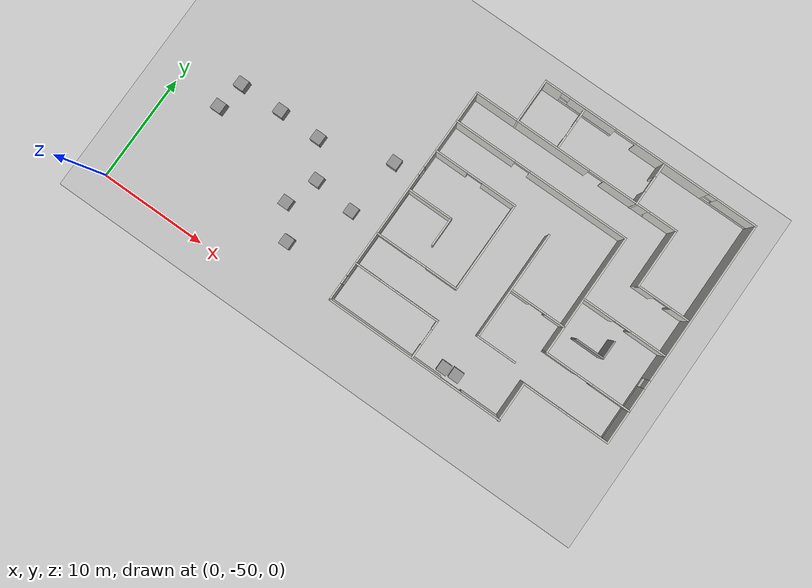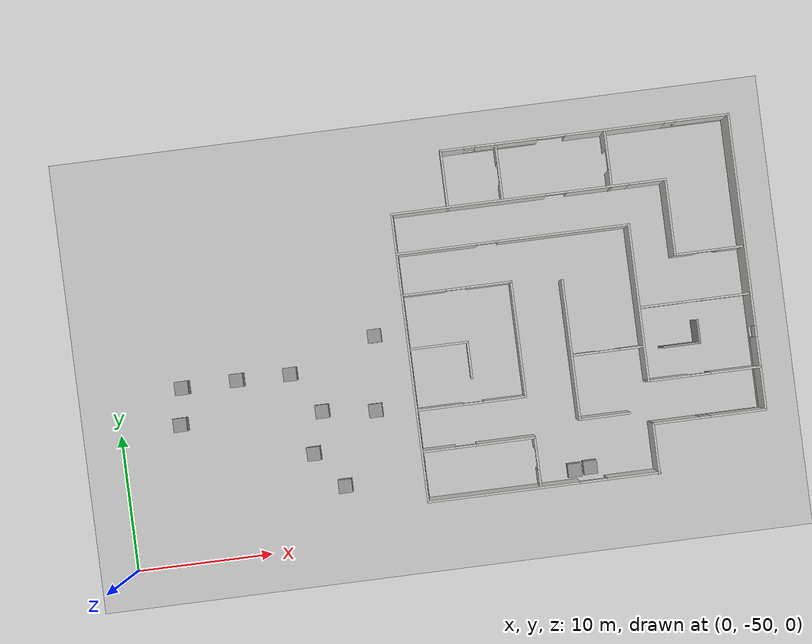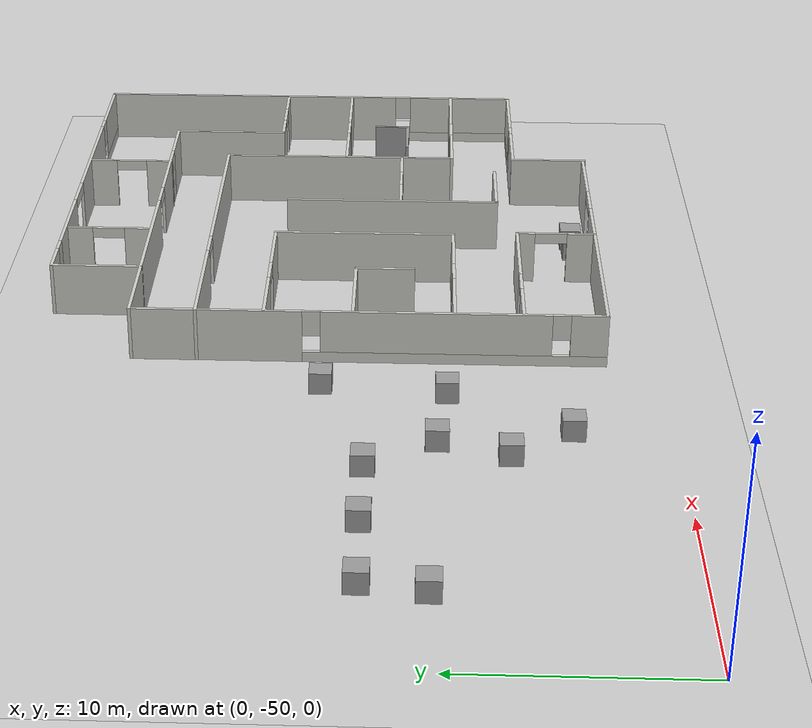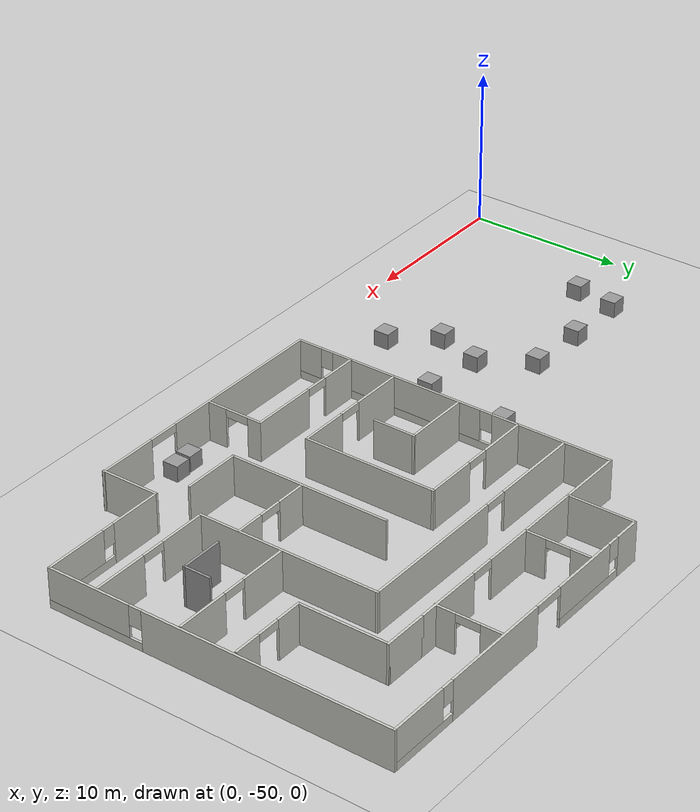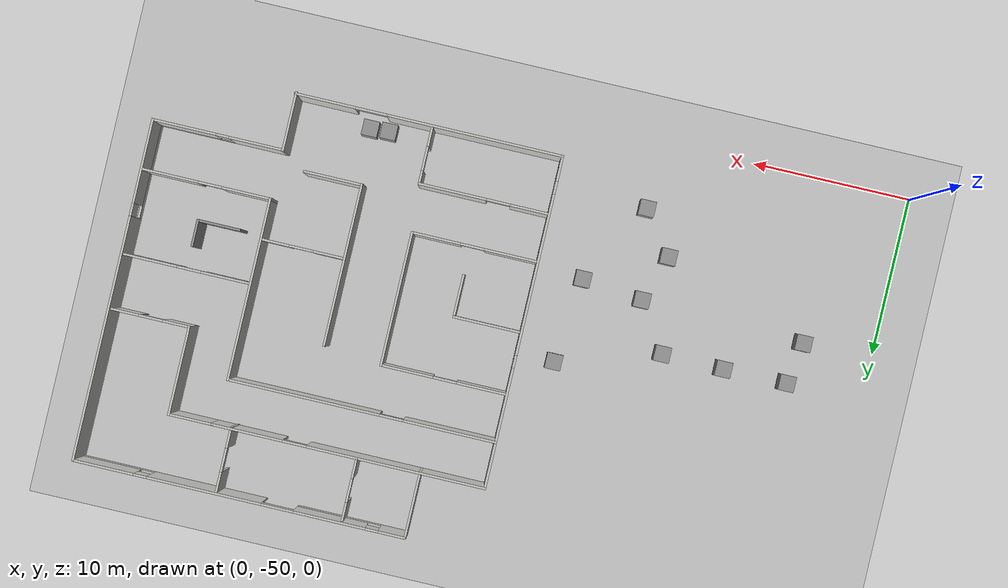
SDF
<sdf version="1.6">
 <world name="default">
  <model name="ground_plane">
   <static>1</static>
   <link name="link">
    <collision name="collision">
     <geometry><plane><normal>0 0 1</normal><size>100 100</size></plane></geometry>
     <surface><friction><ode><mu>100</mu><mu2>50</mu2></ode></friction></surface>
    </collision>
    <visual name="visual">
     <cast_shadows>0</cast_shadows>
     <geometry><plane><normal>0 0 1</normal><size>100 100</size></plane></geometry>
     <material>
      <script><uri>file://media/materials/scripts/gazebo.material</uri><name>Gazebo/Grey</name></script>
     </material>
    </visual>
   </link>
  </model>
  <model name="Multi_25_1_0">
   <pose>34.4136 -34.9276 0 0 -0 0</pose>
   <link name="Wall_0">
    <pose>2.0436 12.5284 0 0 -0 0</pose>
    <visual name="Wall_0_Visual_0">
     <pose>-9.6473 0 1.25 0 -0 0</pose>
     <geometry><box><size>1.7684 0.15 2.5</size></box></geometry>
     <material>
      <script><uri>file://media/materials/scripts/gazebo.material</uri><name>Gazebo/CeilingTiled</name></script>
      <ambient>1 1 1 1</ambient>
     </material>
     <meta><layer>0</layer></meta>
    </visual>
    <collision name="Wall_0_Collision_0">
     <geometry><box><size>1.7684 0.15 2.5</size></box></geometry>
     <pose>-9.6473 0 1.25 0 -0 0</pose>
    </collision>
    <visual name="Wall_0_Visual_1">
     <pose>2.22137 0 1.25 0 -0 0</pose>
     <geometry><box><size>7.23714 0.15 2.5</size></box></geometry>
     <material>
      <script><uri>file://media/materials/scripts/gazebo.material</uri><name>Gazebo/CeilingTiled</name></script>
      <ambient>1 1 1 1</ambient>
     </material>
     <meta><layer>0</layer></meta>
    </visual>
    <collision name="Wall_0_Collision_1">
     <geometry><box><size>7.23714 0.15 2.5</size></box></geometry>
     <pose>2.22137 0 1.25 0 -0 0</pose>
    </collision>
    <visual name="Wall_0_Visual_2">
     <pose>-6.08015 0 0.25 0 -0 0</pose>
     <geometry><box><size>5.3659 0.15 0.5</size></box></geometry>
     <material>
      <script><uri>file://media/materials/scripts/gazebo.material</uri><name>Gazebo/CeilingTiled</name></script>
      <ambient>1 1 1 1</ambient>
     </material>
     <meta><layer>0</layer></meta>
    </visual>
    <collision name="Wall_0_Collision_2">
     <geometry><box><size>5.3659 0.15 0.5</size></box></geometry>
     <pose>-6.08015 0 0.25 0 -0 0</pose>
    </collision>
    <visual name="Wall_0_Visual_3">
     <pose>8.18572 0 0.25 0 -0 0</pose>
     <geometry><box><size>4.69156 0.15 0.5</size></box></geometry>
     <material>
      <script><uri>file://media/materials/scripts/gazebo.material</uri><name>Gazebo/CeilingTiled</name></script>
      <ambient>1 1 1 1</ambient>
     </material>
     <meta><layer>0</layer></meta>
    </visual>
    <collision name="Wall_0_Collision_3">
     <geometry><box><size>4.69156 0.15 0.5</size></box></geometry>
     <pose>8.18572 0 0.25 0 -0 0</pose>
    </collision>
    <visual name="Wall_0_Visual_4">
     <pose>-5.68015 0 1.5 0 -0 0</pose>
     <geometry><box><size>4.5659 0.15 2</size></box></geometry>
     <material>
      <script><uri>file://media/materials/scripts/gazebo.material</uri><name>Gazebo/CeilingTiled</name></script>
      <ambient>1 1 1 1</ambient>
     </material>
     <meta><layer>0</layer></meta>
    </visual>
    <collision name="Wall_0_Collision_4">
     <geometry><box><size>4.5659 0.15 2</size></box></geometry>
     <pose>-5.68015 0 1.5 0 -0 0</pose>
    </collision>
    <visual name="Wall_0_Visual_5">
     <pose>-5.68015 0 1.5 0 -0 0</pose>
     <geometry><box><size>4.5659 0.15 2</size></box></geometry>
     <material>
      <script><uri>file://media/materials/scripts/gazebo.material</uri><name>Gazebo/CeilingTiled</name></script>
      <ambient>1 1 1 1</ambient>
     </material>
     <meta><layer>0</layer></meta>
    </visual>
    <collision name="Wall_0_Collision_5">
     <geometry><box><size>4.5659 0.15 2</size></box></geometry>
     <pose>-5.68015 0 1.5 0 -0 0</pose>
    </collision>
    <visual name="Wall_0_Visual_6">
     <pose>8.58572 0 1.5 0 -0 0</pose>
     <geometry><box><size>3.89156 0.15 2</size></box></geometry>
     <material>
      <script><uri>file://media/materials/scripts/gazebo.material</uri><name>Gazebo/CeilingTiled</name></script>
      <ambient>1 1 1 1</ambient>
     </material>
     <meta><layer>0</layer></meta>
    </visual>
    <collision name="Wall_0_Collision_6">
     <geometry><box><size>3.89156 0.15 2</size></box></geometry>
     <pose>8.58572 0 1.5 0 -0 0</pose>
    </collision>
    <visual name="Wall_0_Visual_7">
     <pose>-8.3631 0 1.9 0 -0 0</pose>
     <geometry><box><size>0.8 0.15 1.2</size></box></geometry>
     <material>
      <script><uri>file://media/materials/scripts/gazebo.material</uri><name>Gazebo/CeilingTiled</name></script>
      <ambient>1 1 1 1</ambient>
     </material>
     <meta><layer>0</layer></meta>
    </visual>
    <collision name="Wall_0_Collision_7">
     <geometry><box><size>0.8 0.15 1.2</size></box></geometry>
     <pose>-8.3631 0 1.9 0 -0 0</pose>
    </collision>
    <visual name="Wall_0_Visual_8">
     <pose>6.23994 0 1.9 0 -0 0</pose>
     <geometry><box><size>0.8 0.15 1.2</size></box></geometry>
     <material>
      <script><uri>file://media/materials/scripts/gazebo.material</uri><name>Gazebo/CeilingTiled</name></script>
      <ambient>1 1 1 1</ambient>
     </material>
     <meta><layer>0</layer></meta>
    </visual>
    <collision name="Wall_0_Collision_8">
     <geometry><box><size>0.8 0.15 1.2</size></box></geometry>
     <pose>6.23994 0 1.9 0 -0 0</pose>
    </collision>
    <visual name="Wall_0_Visual_9">
     <pose>-2.3972 0 2.25 0 -0 0</pose>
     <geometry><box><size>2 0.15 0.5</size></box></geometry>
     <material>
      <script><uri>file://media/materials/scripts/gazebo.material</uri><name>Gazebo/CeilingTiled</name></script>
      <ambient>1 1 1 1</ambient>
     </material>
     <meta><layer>0</layer></meta>
    </visual>
    <collision name="Wall_0_Collision_9">
     <geometry><box><size>2 0.15 0.5</size></box></geometry>
     <pose>-2.3972 0 2.25 0 -0 0</pose>
    </collision>
    <visual name="Wall_0_Visual_10">
     <pose>-2.3972 0 2.25 0 -0 0</pose>
     <geometry><box><size>2 0.15 0.5</size></box></geometry>
     <material>
      <script><uri>file://media/materials/scripts/gazebo.material</uri><name>Gazebo/CeilingTiled</name></script>
      <ambient>1 1 1 1</ambient>
     </material>
     <meta><layer>0</layer></meta>
    </visual>
    <collision name="Wall_0_Collision_10">
     <geometry><box><size>2 0.15 0.5</size></box></geometry>
     <pose>-2.3972 0 2.25 0 -0 0</pose>
    </collision>
   </link>
   <link name="Wall_10">
    <pose>-8.49254 2.53286 0 0 -0 3.14159</pose>
    <visual name="Wall_10_Visual_0">
     <pose>-2.32929 0 1.25 0 -0 0</pose>
     <geometry><box><size>3.34143 0.15 2.5</size></box></geometry>
     <material>
      <script><uri>file://media/materials/scripts/gazebo.material</uri><name>Gazebo/CeilingTiled</name></script>
      <ambient>1 1 1 1</ambient>
     </material>
     <meta><layer>0</layer></meta>
    </visual>
    <collision name="Wall_10_Collision_0">
     <geometry><box><size>3.34143 0.15 2.5</size></box></geometry>
     <pose>-2.32929 0 1.25 0 -0 0</pose>
    </collision>
    <visual name="Wall_10_Visual_1">
     <pose>2.42071 0 1.25 0 -0 0</pose>
     <geometry><box><size>3.15857 0.15 2.5</size></box></geometry>
     <material>
      <script><uri>file://media/materials/scripts/gazebo.material</uri><name>Gazebo/CeilingTiled</name></script>
      <ambient>1 1 1 1</ambient>
     </material>
     <meta><layer>0</layer></meta>
    </visual>
    <collision name="Wall_10_Collision_1">
     <geometry><box><size>3.15857 0.15 2.5</size></box></geometry>
     <pose>2.42071 0 1.25 0 -0 0</pose>
    </collision>
    <visual name="Wall_10_Visual_2">
     <pose>0.091428 0 2.25 0 -0 0</pose>
     <geometry><box><size>1.5 0.15 0.5</size></box></geometry>
     <material>
      <script><uri>file://media/materials/scripts/gazebo.material</uri><name>Gazebo/CeilingTiled</name></script>
      <ambient>1 1 1 1</ambient>
     </material>
     <meta><layer>0</layer></meta>
    </visual>
    <collision name="Wall_10_Collision_2">
     <geometry><box><size>1.5 0.15 0.5</size></box></geometry>
     <pose>0.091428 0 2.25 0 -0 0</pose>
    </collision>
   </link>
   <link name="Wall_12">
    <pose>8.42608 -5.83035 0 0 -0 -3.14154</pose>
    <visual name="Wall_12_Visual_0">
     <pose>-2.30606 0 1.25 0 -0 0</pose>
     <geometry><box><size>3.63788 0.15 2.5</size></box></geometry>
     <material>
      <script><uri>file://media/materials/scripts/gazebo.material</uri><name>Gazebo/CeilingTiled</name></script>
      <ambient>1 1 1 1</ambient>
     </material>
     <meta><layer>0</layer></meta>
    </visual>
    <collision name="Wall_12_Collision_0">
     <geometry><box><size>3.63788 0.15 2.5</size></box></geometry>
     <pose>-2.30606 0 1.25 0 -0 0</pose>
    </collision>
    <visual name="Wall_12_Visual_1">
     <pose>2.56894 0 1.25 0 -0 0</pose>
     <geometry><box><size>3.11212 0.15 2.5</size></box></geometry>
     <material>
      <script><uri>file://media/materials/scripts/gazebo.material</uri><name>Gazebo/CeilingTiled</name></script>
      <ambient>1 1 1 1</ambient>
     </material>
     <meta><layer>0</layer></meta>
    </visual>
    <collision name="Wall_12_Collision_1">
     <geometry><box><size>3.11212 0.15 2.5</size></box></geometry>
     <pose>2.56894 0 1.25 0 -0 0</pose>
    </collision>
    <visual name="Wall_12_Visual_2">
     <pose>0.262876 0 2.25 0 -0 0</pose>
     <geometry><box><size>1.5 0.15 0.5</size></box></geometry>
     <material>
      <script><uri>file://media/materials/scripts/gazebo.material</uri><name>Gazebo/CeilingTiled</name></script>
      <ambient>1 1 1 1</ambient>
     </material>
     <meta><layer>0</layer></meta>
    </visual>
    <collision name="Wall_12_Collision_2">
     <geometry><box><size>1.5 0.15 0.5</size></box></geometry>
     <pose>0.262876 0 2.25 0 -0 0</pose>
    </collision>
   </link>
   <link name="Wall_13">
    <collision name="Wall_13_Collision">
     <geometry><box><size>11.523 0.15 2.5</size></box></geometry>
     <pose>0 0 1.25 0 -0 0</pose>
    </collision>
    <visual name="Wall_13_Visual">
     <pose>0 0 1.25 0 -0 0</pose>
     <geometry><box><size>11.523 0.15 2.5</size></box></geometry>
     <material>
      <script><uri>file://media/materials/scripts/gazebo.material</uri><name>Gazebo/CeilingTiled</name></script>
      <ambient>1 1 1 1</ambient>
     </material>
     <meta><layer>0</layer></meta>
    </visual>
    <pose>4.3761 -0.144061 0 0 -0 1.5708</pose>
   </link>
   <link name="Wall_14">
    <pose>-4.0619 5.54244 0 0 -0 3.14159</pose>
    <visual name="Wall_14_Visual_0">
     <pose>-3.70726 0 1.25 0 -0 0</pose>
     <geometry><box><size>9.61148 0.15 2.5</size></box></geometry>
     <material>
      <script><uri>file://media/materials/scripts/gazebo.material</uri><name>Gazebo/CeilingTiled</name></script>
      <ambient>1 1 1 1</ambient>
     </material>
     <meta><layer>0</layer></meta>
    </visual>
    <collision name="Wall_14_Collision_0">
     <geometry><box><size>9.61148 0.15 2.5</size></box></geometry>
     <pose>-3.70726 0 1.25 0 -0 0</pose>
    </collision>
    <visual name="Wall_14_Visual_1">
     <pose>5.55574 0 1.25 0 -0 0</pose>
     <geometry><box><size>5.91452 0.15 2.5</size></box></geometry>
     <material>
      <script><uri>file://media/materials/scripts/gazebo.material</uri><name>Gazebo/CeilingTiled</name></script>
      <ambient>1 1 1 1</ambient>
     </material>
     <meta><layer>0</layer></meta>
    </visual>
    <collision name="Wall_14_Collision_1">
     <geometry><box><size>5.91452 0.15 2.5</size></box></geometry>
     <pose>5.55574 0 1.25 0 -0 0</pose>
    </collision>
    <visual name="Wall_14_Visual_2">
     <pose>1.84848 0 2.25 0 -0 0</pose>
     <geometry><box><size>1.5 0.15 0.5</size></box></geometry>
     <material>
      <script><uri>file://media/materials/scripts/gazebo.material</uri><name>Gazebo/CeilingTiled</name></script>
      <ambient>1 1 1 1</ambient>
     </material>
     <meta><layer>0</layer></meta>
    </visual>
    <collision name="Wall_14_Collision_2">
     <geometry><box><size>1.5 0.15 0.5</size></box></geometry>
     <pose>1.84848 0 2.25 0 -0 0</pose>
    </collision>
   </link>
   <link name="Wall_16">
    <pose>-8.35086 -8.83167 0 0 -0 0</pose>
    <visual name="Wall_16_Visual_0">
     <pose>-2.90584 0 1.25 0 -0 0</pose>
     <geometry><box><size>2.43832 0.15 2.5</size></box></geometry>
     <material>
      <script><uri>file://media/materials/scripts/gazebo.material</uri><name>Gazebo/CeilingTiled</name></script>
      <ambient>1 1 1 1</ambient>
     </material>
     <meta><layer>0</layer></meta>
    </visual>
    <collision name="Wall_16_Collision_0">
     <geometry><box><size>2.43832 0.15 2.5</size></box></geometry>
     <pose>-2.90584 0 1.25 0 -0 0</pose>
    </collision>
    <visual name="Wall_16_Visual_1">
     <pose>1.96916 0 1.25 0 -0 0</pose>
     <geometry><box><size>4.31168 0.15 2.5</size></box></geometry>
     <material>
      <script><uri>file://media/materials/scripts/gazebo.material</uri><name>Gazebo/CeilingTiled</name></script>
      <ambient>1 1 1 1</ambient>
     </material>
     <meta><layer>0</layer></meta>
    </visual>
    <collision name="Wall_16_Collision_1">
     <geometry><box><size>4.31168 0.15 2.5</size></box></geometry>
     <pose>1.96916 0 1.25 0 -0 0</pose>
    </collision>
    <visual name="Wall_16_Visual_2">
     <pose>-0.936676 0 2.25 0 -0 0</pose>
     <geometry><box><size>1.5 0.15 0.5</size></box></geometry>
     <material>
      <script><uri>file://media/materials/scripts/gazebo.material</uri><name>Gazebo/CeilingTiled</name></script>
      <ambient>1 1 1 1</ambient>
     </material>
     <meta><layer>0</layer></meta>
    </visual>
    <collision name="Wall_16_Collision_2">
     <geometry><box><size>1.5 0.15 0.5</size></box></geometry>
     <pose>-0.936676 0 2.25 0 -0 0</pose>
    </collision>
   </link>
   <link name="Wall_17">
    <pose>-4.30086 -10.6317 0 0 -0 -1.5708</pose>
    <visual name="Wall_17_Visual_0">
     <pose>-1.41622 0 1.25 0 -0 0</pose>
     <geometry><box><size>0.917556 0.15 2.5</size></box></geometry>
     <material>
      <script><uri>file://media/materials/scripts/gazebo.material</uri><name>Gazebo/CeilingTiled</name></script>
      <ambient>1 1 1 1</ambient>
     </material>
     <meta><layer>0</layer></meta>
    </visual>
    <collision name="Wall_17_Collision_0">
     <geometry><box><size>0.917556 0.15 2.5</size></box></geometry>
     <pose>-1.41622 0 1.25 0 -0 0</pose>
    </collision>
    <visual name="Wall_17_Visual_1">
     <pose>1.20878 0 1.25 0 -0 0</pose>
     <geometry><box><size>1.33244 0.15 2.5</size></box></geometry>
     <material>
      <script><uri>file://media/materials/scripts/gazebo.material</uri><name>Gazebo/CeilingTiled</name></script>
      <ambient>1 1 1 1</ambient>
     </material>
     <meta><layer>0</layer></meta>
    </visual>
    <collision name="Wall_17_Collision_1">
     <geometry><box><size>1.33244 0.15 2.5</size></box></geometry>
     <pose>1.20878 0 1.25 0 -0 0</pose>
    </collision>
    <visual name="Wall_17_Visual_2">
     <pose>-0.207444 0 2.25 0 -0 0</pose>
     <geometry><box><size>1.5 0.15 0.5</size></box></geometry>
     <material>
      <script><uri>file://media/materials/scripts/gazebo.material</uri><name>Gazebo/CeilingTiled</name></script>
      <ambient>1 1 1 1</ambient>
     </material>
     <meta><layer>0</layer></meta>
    </visual>
    <collision name="Wall_17_Collision_2">
     <geometry><box><size>1.5 0.15 0.5</size></box></geometry>
     <pose>-0.207444 0 2.25 0 -0 0</pose>
    </collision>
   </link>
   <link name="Wall_19">
    <collision name="Wall_19_Collision">
     <geometry><box><size>3.75 0.15 2.5</size></box></geometry>
     <pose>0 0 1.25 0 -0 0</pose>
    </collision>
    <visual name="Wall_19_Visual">
     <pose>0 0 1.25 0 -0 0</pose>
     <geometry><box><size>3.75 0.15 2.5</size></box></geometry>
     <material>
      <script><uri>file://media/materials/scripts/gazebo.material</uri><name>Gazebo/CeilingTiled</name></script>
      <ambient>1 1 1 1</ambient>
     </material>
     <meta><layer>0</layer></meta>
    </visual>
    <pose>4.30203 -10.7284 0 0 -0 1.5708</pose>
   </link>
   <link name="Wall_20">
    <pose>8.35203 -8.92844 0 0 -0 0</pose>
    <visual name="Wall_20_Visual_0">
     <pose>-2.38956 0 1.25 0 -0 0</pose>
     <geometry><box><size>3.47088 0.15 2.5</size></box></geometry>
     <material>
      <script><uri>file://media/materials/scripts/gazebo.material</uri><name>Gazebo/CeilingTiled</name></script>
      <ambient>1 1 1 1</ambient>
     </material>
     <meta><layer>0</layer></meta>
    </visual>
    <collision name="Wall_20_Collision_0">
     <geometry><box><size>3.47088 0.15 2.5</size></box></geometry>
     <pose>-2.38956 0 1.25 0 -0 0</pose>
    </collision>
    <visual name="Wall_20_Visual_1">
     <pose>1.73544 0 0.25 0 -0 0</pose>
     <geometry><box><size>4.77912 0.15 0.5</size></box></geometry>
     <material>
      <script><uri>file://media/materials/scripts/gazebo.material</uri><name>Gazebo/CeilingTiled</name></script>
      <ambient>1 1 1 1</ambient>
     </material>
     <meta><layer>0</layer></meta>
    </visual>
    <collision name="Wall_20_Collision_1">
     <geometry><box><size>4.77912 0.15 0.5</size></box></geometry>
     <pose>1.73544 0 0.25 0 -0 0</pose>
    </collision>
    <visual name="Wall_20_Visual_2">
     <pose>2.13544 0 1.5 0 -0 0</pose>
     <geometry><box><size>3.97912 0.15 2</size></box></geometry>
     <material>
      <script><uri>file://media/materials/scripts/gazebo.material</uri><name>Gazebo/CeilingTiled</name></script>
      <ambient>1 1 1 1</ambient>
     </material>
     <meta><layer>0</layer></meta>
    </visual>
    <collision name="Wall_20_Collision_2">
     <geometry><box><size>3.97912 0.15 2</size></box></geometry>
     <pose>2.13544 0 1.5 0 -0 0</pose>
    </collision>
    <visual name="Wall_20_Visual_3">
     <pose>-0.254121 0 1.9 0 -0 0</pose>
     <geometry><box><size>0.8 0.15 1.2</size></box></geometry>
     <material>
      <script><uri>file://media/materials/scripts/gazebo.material</uri><name>Gazebo/CeilingTiled</name></script>
      <ambient>1 1 1 1</ambient>
     </material>
     <meta><layer>0</layer></meta>
    </visual>
    <collision name="Wall_20_Collision_3">
     <geometry><box><size>0.8 0.15 1.2</size></box></geometry>
     <pose>-0.254121 0 1.9 0 -0 0</pose>
    </collision>
   </link>
   <link name="Wall_22">
    <pose>8.38972 -0.490314 0 0 -0 0</pose>
    <visual name="Wall_22_Visual_0">
     <pose>-2.45412 0 1.25 0 -0 0</pose>
     <geometry><box><size>3.09176 0.15 2.5</size></box></geometry>
     <material>
      <script><uri>file://media/materials/scripts/gazebo.material</uri><name>Gazebo/CeilingTiled</name></script>
      <ambient>1 1 1 1</ambient>
     </material>
     <meta><layer>0</layer></meta>
    </visual>
    <collision name="Wall_22_Collision_0">
     <geometry><box><size>3.09176 0.15 2.5</size></box></geometry>
     <pose>-2.45412 0 1.25 0 -0 0</pose>
    </collision>
    <visual name="Wall_22_Visual_1">
     <pose>2.29588 0 1.25 0 -0 0</pose>
     <geometry><box><size>3.40824 0.15 2.5</size></box></geometry>
     <material>
      <script><uri>file://media/materials/scripts/gazebo.material</uri><name>Gazebo/CeilingTiled</name></script>
      <ambient>1 1 1 1</ambient>
     </material>
     <meta><layer>0</layer></meta>
    </visual>
    <collision name="Wall_22_Collision_1">
     <geometry><box><size>3.40824 0.15 2.5</size></box></geometry>
     <pose>2.29588 0 1.25 0 -0 0</pose>
    </collision>
    <visual name="Wall_22_Visual_2">
     <pose>-0.158236 0 2.25 0 -0 0</pose>
     <geometry><box><size>1.5 0.15 0.5</size></box></geometry>
     <material>
      <script><uri>file://media/materials/scripts/gazebo.material</uri><name>Gazebo/CeilingTiled</name></script>
      <ambient>1 1 1 1</ambient>
     </material>
     <meta><layer>0</layer></meta>
    </visual>
    <collision name="Wall_22_Collision_2">
     <geometry><box><size>1.5 0.15 0.5</size></box></geometry>
     <pose>-0.158236 0 2.25 0 -0 0</pose>
    </collision>
   </link>
   <link name="Wall_24">
    <pose>-3.9024 8.44544 0 0 -0 0</pose>
    <visual name="Wall_24_Visual_0">
     <pose>-3.00658 0 1.25 0 -0 0</pose>
     <geometry><box><size>11.3323 0.15 2.5</size></box></geometry>
     <material>
      <script><uri>file://media/materials/scripts/gazebo.material</uri><name>Gazebo/CeilingTiled</name></script>
      <ambient>1 1 1 1</ambient>
     </material>
     <meta><layer>0</layer></meta>
    </visual>
    <collision name="Wall_24_Collision_0">
     <geometry><box><size>11.3323 0.15 2.5</size></box></geometry>
     <pose>-3.00658 0 1.25 0 -0 0</pose>
    </collision>
    <visual name="Wall_24_Visual_1">
     <pose>6.41613 0 1.25 0 -0 0</pose>
     <geometry><box><size>4.51315 0.15 2.5</size></box></geometry>
     <material>
      <script><uri>file://media/materials/scripts/gazebo.material</uri><name>Gazebo/CeilingTiled</name></script>
      <ambient>1 1 1 1</ambient>
     </material>
     <meta><layer>0</layer></meta>
    </visual>
    <collision name="Wall_24_Collision_1">
     <geometry><box><size>4.51315 0.15 2.5</size></box></geometry>
     <pose>6.41613 0 1.25 0 -0 0</pose>
    </collision>
    <visual name="Wall_24_Visual_2">
     <pose>3.40955 0 2.25 0 -0 0</pose>
     <geometry><box><size>1.5 0.15 0.5</size></box></geometry>
     <material>
      <script><uri>file://media/materials/scripts/gazebo.material</uri><name>Gazebo/CeilingTiled</name></script>
      <ambient>1 1 1 1</ambient>
     </material>
     <meta><layer>0</layer></meta>
    </visual>
    <collision name="Wall_24_Collision_2">
     <geometry><box><size>1.5 0.15 0.5</size></box></geometry>
     <pose>3.40955 0 2.25 0 -0 0</pose>
    </collision>
   </link>
   <link name="Wall_25">
    <collision name="Wall_25_Collision">
     <geometry><box><size>2.873 0.15 2.5</size></box></geometry>
     <pose>0 0 1.25 0 -0 0</pose>
    </collision>
    <visual name="Wall_25_Visual">
     <pose>0 0 1.25 0 -0 0</pose>
     <geometry><box><size>2.873 0.15 2.5</size></box></geometry>
     <material>
      <script><uri>file://media/materials/scripts/gazebo.material</uri><name>Gazebo/CeilingTiled</name></script>
      <ambient>1 1 1 1</ambient>
     </material>
     <meta><layer>0</layer></meta>
    </visual>
    <pose>6.0566 8.44544 0 0 -0 0</pose>
   </link>
   <link name="Wall_26">
    <collision name="Wall_26_Collision">
     <geometry><box><size>5.64336 0.15 2.5</size></box></geometry>
     <pose>0 0 1.25 0 -0 0</pose>
    </collision>
    <visual name="Wall_26_Visual">
     <pose>0 0 1.25 0 -0 0</pose>
     <geometry><box><size>5.64336 0.15 2.5</size></box></geometry>
     <material>
      <script><uri>file://media/materials/scripts/gazebo.material</uri><name>Gazebo/CeilingTiled</name></script>
      <ambient>1 1 1 1</ambient>
     </material>
     <meta><layer>0</layer></meta>
    </visual>
    <pose>7.418 5.69876 0 0 -0 -1.57083</pose>
   </link>
   <link name="Wall_27">
    <pose>9.84291 2.95208 0 0 -0 0</pose>
    <visual name="Wall_27_Visual_0">
     <pose>-1.6216 0 1.25 0 -0 0</pose>
     <geometry><box><size>1.7568 0.15 2.5</size></box></geometry>
     <material>
      <script><uri>file://media/materials/scripts/gazebo.material</uri><name>Gazebo/CeilingTiled</name></script>
      <ambient>1 1 1 1</ambient>
     </material>
     <meta><layer>0</layer></meta>
    </visual>
    <collision name="Wall_27_Collision_0">
     <geometry><box><size>1.7568 0.15 2.5</size></box></geometry>
     <pose>-1.6216 0 1.25 0 -0 0</pose>
    </collision>
    <visual name="Wall_27_Visual_1">
     <pose>1.6284 0 1.25 0 -0 0</pose>
     <geometry><box><size>1.7432 0.15 2.5</size></box></geometry>
     <material>
      <script><uri>file://media/materials/scripts/gazebo.material</uri><name>Gazebo/CeilingTiled</name></script>
      <ambient>1 1 1 1</ambient>
     </material>
     <meta><layer>0</layer></meta>
    </visual>
    <collision name="Wall_27_Collision_1">
     <geometry><box><size>1.7432 0.15 2.5</size></box></geometry>
     <pose>1.6284 0 1.25 0 -0 0</pose>
    </collision>
    <visual name="Wall_27_Visual_2">
     <pose>0.006802 0 2.25 0 -0 0</pose>
     <geometry><box><size>1.5 0.15 0.5</size></box></geometry>
     <material>
      <script><uri>file://media/materials/scripts/gazebo.material</uri><name>Gazebo/CeilingTiled</name></script>
      <ambient>1 1 1 1</ambient>
     </material>
     <meta><layer>0</layer></meta>
    </visual>
    <collision name="Wall_27_Collision_2">
     <geometry><box><size>1.5 0.15 0.5</size></box></geometry>
     <pose>0.006802 0 2.25 0 -0 0</pose>
    </collision>
   </link>
   <link name="Wall_29">
    <collision name="Wall_29_Collision">
     <geometry><box><size>4.214 0.15 2.5</size></box></geometry>
     <pose>0 0 1.25 0 -0 0</pose>
    </collision>
    <visual name="Wall_29_Visual">
     <pose>0 0 1.25 0 -0 0</pose>
     <geometry><box><size>4.214 0.15 2.5</size></box></geometry>
     <material>
      <script><uri>file://media/materials/scripts/gazebo.material</uri><name>Gazebo/CeilingTiled</name></script>
      <ambient>1 1 1 1</ambient>
     </material>
     <meta><layer>0</layer></meta>
    </visual>
    <pose>-8.4129 10.4774 0 0 -0 -1.5708</pose>
   </link>
   <link name="Wall_31">
    <pose>-4.42098 10.4089 0 0 -0 -1.5708</pose>
    <visual name="Wall_31_Visual_0">
     <pose>-1.40654 0 1.25 0 -0 0</pose>
     <geometry><box><size>1.18693 0.15 2.5</size></box></geometry>
     <material>
      <script><uri>file://media/materials/scripts/gazebo.material</uri><name>Gazebo/CeilingTiled</name></script>
      <ambient>1 1 1 1</ambient>
     </material>
     <meta><layer>0</layer></meta>
    </visual>
    <collision name="Wall_31_Collision_0">
     <geometry><box><size>1.18693 0.15 2.5</size></box></geometry>
     <pose>-1.40654 0 1.25 0 -0 0</pose>
    </collision>
    <visual name="Wall_31_Visual_1">
     <pose>1.34346 0 1.25 0 -0 0</pose>
     <geometry><box><size>1.31307 0.15 2.5</size></box></geometry>
     <material>
      <script><uri>file://media/materials/scripts/gazebo.material</uri><name>Gazebo/CeilingTiled</name></script>
      <ambient>1 1 1 1</ambient>
     </material>
     <meta><layer>0</layer></meta>
    </visual>
    <collision name="Wall_31_Collision_1">
     <geometry><box><size>1.31307 0.15 2.5</size></box></geometry>
     <pose>1.34346 0 1.25 0 -0 0</pose>
    </collision>
    <visual name="Wall_31_Visual_2">
     <pose>-0.063072 0 2.25 0 -0 0</pose>
     <geometry><box><size>1.5 0.15 0.5</size></box></geometry>
     <material>
      <script><uri>file://media/materials/scripts/gazebo.material</uri><name>Gazebo/CeilingTiled</name></script>
      <ambient>1 1 1 1</ambient>
     </material>
     <meta><layer>0</layer></meta>
    </visual>
    <collision name="Wall_31_Collision_2">
     <geometry><box><size>1.5 0.15 0.5</size></box></geometry>
     <pose>-0.063072 0 2.25 0 -0 0</pose>
    </collision>
   </link>
   <link name="Wall_33">
    <pose>3.49868 10.4592 0 0 -0 -1.5708</pose>
    <visual name="Wall_33_Visual_0">
     <pose>-1.40871 0 1.25 0 -0 0</pose>
     <geometry><box><size>1.43258 0.15 2.5</size></box></geometry>
     <material>
      <script><uri>file://media/materials/scripts/gazebo.material</uri><name>Gazebo/CeilingTiled</name></script>
      <ambient>1 1 1 1</ambient>
     </material>
     <meta><layer>0</layer></meta>
    </visual>
    <collision name="Wall_33_Collision_0">
     <geometry><box><size>1.43258 0.15 2.5</size></box></geometry>
     <pose>-1.40871 0 1.25 0 -0 0</pose>
    </collision>
    <visual name="Wall_33_Visual_1">
     <pose>1.46629 0 1.25 0 -0 0</pose>
     <geometry><box><size>1.31742 0.15 2.5</size></box></geometry>
     <material>
      <script><uri>file://media/materials/scripts/gazebo.material</uri><name>Gazebo/CeilingTiled</name></script>
      <ambient>1 1 1 1</ambient>
     </material>
     <meta><layer>0</layer></meta>
    </visual>
    <collision name="Wall_33_Collision_1">
     <geometry><box><size>1.31742 0.15 2.5</size></box></geometry>
     <pose>1.46629 0 1.25 0 -0 0</pose>
    </collision>
    <visual name="Wall_33_Visual_2">
     <pose>0.057583 0 2.25 0 -0 0</pose>
     <geometry><box><size>1.5 0.15 0.5</size></box></geometry>
     <material>
      <script><uri>file://media/materials/scripts/gazebo.material</uri><name>Gazebo/CeilingTiled</name></script>
      <ambient>1 1 1 1</ambient>
     </material>
     <meta><layer>0</layer></meta>
    </visual>
    <collision name="Wall_33_Collision_2">
     <geometry><box><size>1.5 0.15 0.5</size></box></geometry>
     <pose>0.057583 0 2.25 0 -0 0</pose>
    </collision>
   </link>
   <link name="Wall_35">
    <collision name="Wall_35_Collision">
     <geometry><box><size>4.25 0.15 2.5</size></box></geometry>
     <pose>0 0 1.25 0 -0 0</pose>
    </collision>
    <visual name="Wall_35_Visual">
     <pose>0 0 1.25 0 -0 0</pose>
     <geometry><box><size>4.25 0.15 2.5</size></box></geometry>
     <material>
      <script><uri>file://media/materials/scripts/gazebo.material</uri><name>Gazebo/CeilingTiled</name></script>
      <ambient>1 1 1 1</ambient>
     </material>
     <meta><layer>0</layer></meta>
    </visual>
    <pose>-10.2897 -1.37329 0 0 -0 0</pose>
   </link>
   <link name="Wall_36">
    <collision name="Wall_36_Collision">
     <geometry><box><size>2.75 0.15 2.5</size></box></geometry>
     <pose>0 0 1.25 0 -0 0</pose>
    </collision>
    <visual name="Wall_36_Visual">
     <pose>0 0 1.25 0 -0 0</pose>
     <geometry><box><size>2.75 0.15 2.5</size></box></geometry>
     <material>
      <script><uri>file://media/materials/scripts/gazebo.material</uri><name>Gazebo/CeilingTiled</name></script>
      <ambient>1 1 1 1</ambient>
     </material>
     <meta><layer>0</layer></meta>
    </visual>
    <pose>-8.23974 -2.67329 0 0 -0 -1.5708</pose>
   </link>
   <link name="Wall_38">
    <collision name="Wall_38_Collision">
     <geometry><box><size>10.25 0.15 2.5</size></box></geometry>
     <pose>0 0 1.25 0 -0 0</pose>
    </collision>
    <visual name="Wall_38_Visual">
     <pose>0 0 1.25 0 -0 0</pose>
     <geometry><box><size>10.25 0.15 2.5</size></box></geometry>
     <material>
      <script><uri>file://media/materials/scripts/gazebo.material</uri><name>Gazebo/CeilingTiled</name></script>
      <ambient>1 1 1 1</ambient>
     </material>
     <meta><layer>0</layer></meta>
    </visual>
    <pose>-0.889059 -2.90203 0 0 -0 -1.5708</pose>
   </link>
   <link name="Wall_39">
    <collision name="Wall_39_Collision">
     <geometry><box><size>3.75 0.15 2.5</size></box></geometry>
     <pose>0 0 1.25 0 -0 0</pose>
    </collision>
    <visual name="Wall_39_Visual">
     <pose>0 0 1.25 0 -0 0</pose>
     <geometry><box><size>3.75 0.15 2.5</size></box></geometry>
     <material>
      <script><uri>file://media/materials/scripts/gazebo.material</uri><name>Gazebo/CeilingTiled</name></script>
      <ambient>1 1 1 1</ambient>
     </material>
     <meta><layer>0</layer></meta>
    </visual>
    <pose>0.910941 -7.95203 0 0 -0 0</pose>
   </link>
   <link name="Wall_41">
    <pose>-4.0749 -12.4716 0 0 -0 0</pose>
    <visual name="Wall_41_Visual_0">
     <pose>-2.93565 0 1.25 0 -0 0</pose>
     <geometry><box><size>11.1287 0.15 2.5</size></box></geometry>
     <material>
      <script><uri>file://media/materials/scripts/gazebo.material</uri><name>Gazebo/CeilingTiled</name></script>
      <ambient>1 1 1 1</ambient>
     </material>
     <meta><layer>0</layer></meta>
    </visual>
    <collision name="Wall_41_Collision_0">
     <geometry><box><size>11.1287 0.15 2.5</size></box></geometry>
     <pose>-2.93565 0 1.25 0 -0 0</pose>
    </collision>
    <visual name="Wall_41_Visual_1">
     <pose>6.56435 0 1.25 0 -0 0</pose>
     <geometry><box><size>3.87129 0.15 2.5</size></box></geometry>
     <material>
      <script><uri>file://media/materials/scripts/gazebo.material</uri><name>Gazebo/CeilingTiled</name></script>
      <ambient>1 1 1 1</ambient>
     </material>
     <meta><layer>0</layer></meta>
    </visual>
    <collision name="Wall_41_Collision_1">
     <geometry><box><size>3.87129 0.15 2.5</size></box></geometry>
     <pose>6.56435 0 1.25 0 -0 0</pose>
    </collision>
    <visual name="Wall_41_Visual_2">
     <pose>3.62871 0 2.25 0 -0 0</pose>
     <geometry><box><size>2 0.15 0.5</size></box></geometry>
     <material>
      <script><uri>file://media/materials/scripts/gazebo.material</uri><name>Gazebo/CeilingTiled</name></script>
      <ambient>1 1 1 1</ambient>
     </material>
     <meta><layer>0</layer></meta>
    </visual>
    <collision name="Wall_41_Collision_2">
     <geometry><box><size>2 0.15 0.5</size></box></geometry>
     <pose>3.62871 0 2.25 0 -0 0</pose>
    </collision>
   </link>
   <link name="Wall_43">
    <pose>-12.4999 -2.01906 0 0 -0 -1.5708</pose>
    <visual name="Wall_43_Visual_0">
     <pose>-6.7019 0 1.25 0 -0 0</pose>
     <geometry><box><size>7.65119 0.15 2.5</size></box></geometry>
     <material>
      <script><uri>file://media/materials/scripts/gazebo.material</uri><name>Gazebo/CeilingTiled</name></script>
      <ambient>1 1 1 1</ambient>
     </material>
     <meta><layer>0</layer></meta>
    </visual>
    <collision name="Wall_43_Collision_0">
     <geometry><box><size>7.65119 0.15 2.5</size></box></geometry>
     <pose>-6.7019 0 1.25 0 -0 0</pose>
    </collision>
    <visual name="Wall_43_Visual_1">
     <pose>3.8256 0 0.25 0 -0 0</pose>
     <geometry><box><size>13.4038 0.15 0.5</size></box></geometry>
     <material>
      <script><uri>file://media/materials/scripts/gazebo.material</uri><name>Gazebo/CeilingTiled</name></script>
      <ambient>1 1 1 1</ambient>
     </material>
     <meta><layer>0</layer></meta>
    </visual>
    <collision name="Wall_43_Collision_1">
     <geometry><box><size>13.4038 0.15 0.5</size></box></geometry>
     <pose>3.8256 0 0.25 0 -0 0</pose>
    </collision>
    <visual name="Wall_43_Visual_2">
     <pose>2.99983 0 1.5 0 -0 0</pose>
     <geometry><box><size>10.1523 0.15 2</size></box></geometry>
     <material>
      <script><uri>file://media/materials/scripts/gazebo.material</uri><name>Gazebo/CeilingTiled</name></script>
      <ambient>1 1 1 1</ambient>
     </material>
     <meta><layer>0</layer></meta>
    </visual>
    <collision name="Wall_43_Collision_2">
     <geometry><box><size>10.1523 0.15 2</size></box></geometry>
     <pose>2.99983 0 1.5 0 -0 0</pose>
    </collision>
    <visual name="Wall_43_Visual_3">
     <pose>9.70173 0 1.5 0 -0 0</pose>
     <geometry><box><size>1.65153 0.15 2</size></box></geometry>
     <material>
      <script><uri>file://media/materials/scripts/gazebo.material</uri><name>Gazebo/CeilingTiled</name></script>
      <ambient>1 1 1 1</ambient>
     </material>
     <meta><layer>0</layer></meta>
    </visual>
    <collision name="Wall_43_Collision_3">
     <geometry><box><size>1.65153 0.15 2</size></box></geometry>
     <pose>9.70173 0 1.5 0 -0 0</pose>
    </collision>
    <visual name="Wall_43_Visual_4">
     <pose>-2.47631 0 1.9 0 -0 0</pose>
     <geometry><box><size>0.8 0.15 1.2</size></box></geometry>
     <material>
      <script><uri>file://media/materials/scripts/gazebo.material</uri><name>Gazebo/CeilingTiled</name></script>
      <ambient>1 1 1 1</ambient>
     </material>
     <meta><layer>0</layer></meta>
    </visual>
    <collision name="Wall_43_Collision_4">
     <geometry><box><size>0.8 0.15 1.2</size></box></geometry>
     <pose>-2.47631 0 1.9 0 -0 0</pose>
    </collision>
    <visual name="Wall_43_Visual_5">
     <pose>8.47597 0 1.9 0 -0 0</pose>
     <geometry><box><size>0.8 0.15 1.2</size></box></geometry>
     <material>
      <script><uri>file://media/materials/scripts/gazebo.material</uri><name>Gazebo/CeilingTiled</name></script>
      <ambient>1 1 1 1</ambient>
     </material>
     <meta><layer>0</layer></meta>
    </visual>
    <collision name="Wall_43_Collision_5">
     <geometry><box><size>0.8 0.15 1.2</size></box></geometry>
     <pose>8.47597 0 1.9 0 -0 0</pose>
    </collision>
   </link>
   <link name="Wall_45">
    <collision name="Wall_45_Collision">
     <geometry><box><size>1.75 0.15 2.5</size></box></geometry>
     <pose>0 0 1.25 0 -0 0</pose>
    </collision>
    <visual name="Wall_45_Visual">
     <pose>0 0 1.25 0 -0 0</pose>
     <geometry><box><size>1.75 0.15 2.5</size></box></geometry>
     <material>
      <script><uri>file://media/materials/scripts/gazebo.material</uri><name>Gazebo/Grey</name></script>
      <ambient>1 1 1 1</ambient>
     </material>
     <meta><layer>0</layer></meta>
    </visual>
    <pose>8.38619 -2.74459 0 0 -0 -1.5708</pose>
   </link>
   <link name="Wall_46">
    <collision name="Wall_46_Collision">
     <geometry><box><size>2.75 0.15 2.5</size></box></geometry>
     <pose>0 0 1.25 0 -0 0</pose>
    </collision>
    <visual name="Wall_46_Visual">
     <pose>0 0 1.25 0 -0 0</pose>
     <geometry><box><size>2.75 0.15 2.5</size></box></geometry>
     <material>
      <script><uri>file://media/materials/scripts/gazebo.material</uri><name>Gazebo/Grey</name></script>
      <ambient>1 1 1 1</ambient>
     </material>
     <meta><layer>0</layer></meta>
    </visual>
    <pose>7.08619 -3.54459 0 0 -0 3.14159</pose>
   </link>
   <link name="Wall_48">
    <pose>1.77908 -3.30199 0 0 -0 0</pose>
    <visual name="Wall_48_Visual_0">
     <pose>-1.66413 0 1.25 0 -0 0</pose>
     <geometry><box><size>1.92174 0.15 2.5</size></box></geometry>
     <material>
      <script><uri>file://media/materials/scripts/gazebo.material</uri><name>Gazebo/CeilingTiled</name></script>
      <ambient>1 1 1 1</ambient>
     </material>
     <meta><layer>0</layer></meta>
    </visual>
    <collision name="Wall_48_Collision_0">
     <geometry><box><size>1.92174 0.15 2.5</size></box></geometry>
     <pose>-1.66413 0 1.25 0 -0 0</pose>
    </collision>
    <visual name="Wall_48_Visual_1">
     <pose>1.71087 0 1.25 0 -0 0</pose>
     <geometry><box><size>1.82826 0.15 2.5</size></box></geometry>
     <material>
      <script><uri>file://media/materials/scripts/gazebo.material</uri><name>Gazebo/CeilingTiled</name></script>
      <ambient>1 1 1 1</ambient>
     </material>
     <meta><layer>0</layer></meta>
    </visual>
    <collision name="Wall_48_Collision_1">
     <geometry><box><size>1.82826 0.15 2.5</size></box></geometry>
     <pose>1.71087 0 1.25 0 -0 0</pose>
    </collision>
    <visual name="Wall_48_Visual_2">
     <pose>0.046736 0 2.25 0 -0 0</pose>
     <geometry><box><size>1.5 0.15 0.5</size></box></geometry>
     <material>
      <script><uri>file://media/materials/scripts/gazebo.material</uri><name>Gazebo/CeilingTiled</name></script>
      <ambient>1 1 1 1</ambient>
     </material>
     <meta><layer>0</layer></meta>
    </visual>
    <collision name="Wall_48_Collision_2">
     <geometry><box><size>1.5 0.15 0.5</size></box></geometry>
     <pose>0.046736 0 2.25 0 -0 0</pose>
    </collision>
   </link>
   <link name="Wall_6">
    <pose>12.5001 1.79994 0 0 -0 -1.5708</pose>
    <visual name="Wall_6_Visual_0">
     <pose>-3.07409 0 1.25 0 -0 0</pose>
     <geometry><box><size>15.4588 0.15 2.5</size></box></geometry>
     <material>
      <script><uri>file://media/materials/scripts/gazebo.material</uri><name>Gazebo/CeilingTiled</name></script>
      <ambient>1 1 1 1</ambient>
     </material>
     <meta><layer>0</layer></meta>
    </visual>
    <collision name="Wall_6_Collision_0">
     <geometry><box><size>15.4588 0.15 2.5</size></box></geometry>
     <pose>-3.07409 0 1.25 0 -0 0</pose>
    </collision>
    <visual name="Wall_6_Visual_1">
     <pose>7.72941 0 0.25 0 -0 0</pose>
     <geometry><box><size>6.14817 0.15 0.5</size></box></geometry>
     <material>
      <script><uri>file://media/materials/scripts/gazebo.material</uri><name>Gazebo/CeilingTiled</name></script>
      <ambient>1 1 1 1</ambient>
     </material>
     <meta><layer>0</layer></meta>
    </visual>
    <collision name="Wall_6_Collision_1">
     <geometry><box><size>6.14817 0.15 0.5</size></box></geometry>
     <pose>7.72941 0 0.25 0 -0 0</pose>
    </collision>
    <visual name="Wall_6_Visual_2">
     <pose>8.12941 0 1.5 0 -0 0</pose>
     <geometry><box><size>5.34817 0.15 2</size></box></geometry>
     <material>
      <script><uri>file://media/materials/scripts/gazebo.material</uri><name>Gazebo/CeilingTiled</name></script>
      <ambient>1 1 1 1</ambient>
     </material>
     <meta><layer>0</layer></meta>
    </visual>
    <collision name="Wall_6_Collision_2">
     <geometry><box><size>5.34817 0.15 2</size></box></geometry>
     <pose>8.12941 0 1.5 0 -0 0</pose>
    </collision>
    <visual name="Wall_6_Visual_3">
     <pose>5.05533 0 1.9 0 -0 0</pose>
     <geometry><box><size>0.8 0.15 1.2</size></box></geometry>
     <material>
      <script><uri>file://media/materials/scripts/gazebo.material</uri><name>Gazebo/CeilingTiled</name></script>
      <ambient>1 1 1 1</ambient>
     </material>
     <meta><layer>0</layer></meta>
    </visual>
    <collision name="Wall_6_Collision_3">
     <geometry><box><size>0.8 0.15 1.2</size></box></geometry>
     <pose>5.05533 0 1.9 0 -0 0</pose>
    </collision>
   </link>
   <link name="Wall_8">
    <pose>-8.49254 -5.81714 0 0 -0 0</pose>
    <visual name="Wall_8_Visual_0">
     <pose>-2.31518 0 1.25 0 -0 0</pose>
     <geometry><box><size>3.36964 0.15 2.5</size></box></geometry>
     <material>
      <script><uri>file://media/materials/scripts/gazebo.material</uri><name>Gazebo/CeilingTiled</name></script>
      <ambient>1 1 1 1</ambient>
     </material>
     <meta><layer>0</layer></meta>
    </visual>
    <collision name="Wall_8_Collision_0">
     <geometry><box><size>3.36964 0.15 2.5</size></box></geometry>
     <pose>-2.31518 0 1.25 0 -0 0</pose>
    </collision>
    <visual name="Wall_8_Visual_1">
     <pose>2.43482 0 1.25 0 -0 0</pose>
     <geometry><box><size>3.13036 0.15 2.5</size></box></geometry>
     <material>
      <script><uri>file://media/materials/scripts/gazebo.material</uri><name>Gazebo/CeilingTiled</name></script>
      <ambient>1 1 1 1</ambient>
     </material>
     <meta><layer>0</layer></meta>
    </visual>
    <collision name="Wall_8_Collision_1">
     <geometry><box><size>3.13036 0.15 2.5</size></box></geometry>
     <pose>2.43482 0 1.25 0 -0 0</pose>
    </collision>
    <visual name="Wall_8_Visual_2">
     <pose>0.119644 0 2.25 0 -0 0</pose>
     <geometry><box><size>1.5 0.15 0.5</size></box></geometry>
     <material>
      <script><uri>file://media/materials/scripts/gazebo.material</uri><name>Gazebo/CeilingTiled</name></script>
      <ambient>1 1 1 1</ambient>
     </material>
     <meta><layer>0</layer></meta>
    </visual>
    <collision name="Wall_8_Collision_2">
     <geometry><box><size>1.5 0.15 0.5</size></box></geometry>
     <pose>0.119644 0 2.25 0 -0 0</pose>
    </collision>
   </link>
   <link name="Wall_9">
    <collision name="Wall_9_Collision">
     <geometry><box><size>8.5 0.15 2.5</size></box></geometry>
     <pose>0 0 1.25 0 -0 0</pose>
    </collision>
    <visual name="Wall_9_Visual">
     <pose>0 0 1.25 0 -0 0</pose>
     <geometry><box><size>8.5 0.15 2.5</size></box></geometry>
     <material>
      <script><uri>file://media/materials/scripts/gazebo.material</uri><name>Gazebo/CeilingTiled</name></script>
      <ambient>1 1 1 1</ambient>
     </material>
     <meta><layer>0</layer></meta>
    </visual>
    <pose>-4.56754 -1.64214 0 0 -0 1.5708</pose>
   </link>
   <static>1</static>
  </model>
  <model name="unit_box_28_clone_38">
   <pose>19.4944 -34.9925 0.5005 -0 -0 -0</pose>
   <link name="link">
    <inertial>
     <mass>1</mass>
     <inertia>
      <ixx>0.166667</ixx>
      <ixy>0</ixy>
      <ixz>0</ixz>
      <iyy>0.166667</iyy>
      <iyz>0</iyz>
      <izz>0.166667</izz>
     </inertia>
    </inertial>
    <collision name="collision"><geometry><box><size>1 1 1</size></box></geometry></collision>
    <visual name="visual">
     <geometry><box><size>1 1 1</size></box></geometry>
     <material>
      <script><name>Gazebo/Grey</name><uri>file://media/materials/scripts/gazebo.material</uri></script>
     </material>
    </visual>
   </link>
  </model>
  <model name="unit_box_28_clone_39">
   <pose>18.9037 -40.4349 0.5005 -0 -0 -0</pose>
   <link name="link">
    <inertial>
     <mass>1</mass>
     <inertia>
      <ixx>0.166667</ixx>
      <ixy>0</ixy>
      <ixz>0</ixz>
      <iyy>0.166667</iyy>
      <iyz>0</iyz>
      <izz>0.166667</izz>
     </inertia>
    </inertial>
    <collision name="collision"><geometry><box><size>1 1 1</size></box></geometry></collision>
    <visual name="visual">
     <geometry><box><size>1 1 1</size></box></geometry>
     <material>
      <script><name>Gazebo/Grey</name><uri>file://media/materials/scripts/gazebo.material</uri></script>
     </material>
    </visual>
   </link>
  </model>
  <model name="unit_box_28_clone_40">
   <pose>15.9968 -45.6426 0.499995 0 1e-05 0</pose>
   <link name="link">
    <inertial>
     <mass>1</mass>
     <inertia>
      <ixx>0.166667</ixx>
      <ixy>0</ixy>
      <ixz>0</ixz>
      <iyy>0.166667</iyy>
      <iyz>0</iyz>
      <izz>0.166667</izz>
     </inertia>
    </inertial>
    <collision name="collision"><geometry><box><size>1 1 1</size></box></geometry></collision>
    <visual name="visual">
     <geometry><box><size>1 1 1</size></box></geometry>
     <material>
      <script><name>Gazebo/Grey</name><uri>file://media/materials/scripts/gazebo.material</uri></script>
     </material>
    </visual>
   </link>
  </model>
  <model name="unit_box_28_clone_41">
   <pose>14 -43 0.499995 0 1e-05 0</pose>
   <link name="link">
    <inertial>
     <mass>1</mass>
     <inertia>
      <ixx>0.166667</ixx>
      <ixy>0</ixy>
      <ixz>0</ixz>
      <iyy>0.166667</iyy>
      <iyz>0</iyz>
      <izz>0.166667</izz>
     </inertia>
    </inertial>
    <collision name="collision"><geometry><box><size>1 1 1</size></box></geometry></collision>
    <visual name="visual">
     <geometry><box><size>1 1 1</size></box></geometry>
     <material>
      <script><name>Gazebo/Grey</name><uri>file://media/materials/scripts/gazebo.material</uri></script>
     </material>
    </visual>
   </link>
  </model>
  <model name="unit_box_28_clone_42">
   <pose>15 -40 0.499995 0 1e-05 0</pose>
   <link name="link">
    <inertial>
     <mass>1</mass>
     <inertia>
      <ixx>0.166667</ixx>
      <ixy>0</ixy>
      <ixz>0</ixz>
      <iyy>0.166667</iyy>
      <iyz>0</iyz>
      <izz>0.166667</izz>
     </inertia>
    </inertial>
    <collision name="collision"><geometry><box><size>1 1 1</size></box></geometry></collision>
    <visual name="visual">
     <geometry><box><size>1 1 1</size></box></geometry>
     <material>
      <script><name>Gazebo/Grey</name><uri>file://media/materials/scripts/gazebo.material</uri></script>
     </material>
    </visual>
   </link>
  </model>
  <model name="unit_box_28_clone_43">
   <pose>13 -37 0.5005 -0 -0 -0</pose>
   <link name="link">
    <inertial>
     <mass>1</mass>
     <inertia>
      <ixx>0.166667</ixx>
      <ixy>0</ixy>
      <ixz>0</ixz>
      <iyy>0.166667</iyy>
      <iyz>0</iyz>
      <izz>0.166667</izz>
     </inertia>
    </inertial>
    <collision name="collision"><geometry><box><size>1 1 1</size></box></geometry></collision>
    <visual name="visual">
     <geometry><box><size>1 1 1</size></box></geometry>
     <material>
      <script><name>Gazebo/Grey</name><uri>file://media/materials/scripts/gazebo.material</uri></script>
     </material>
    </visual>
   </link>
  </model>
  <model name="unit_box_28_clone_44">
   <pose>9.05923 -36.9504 0.5005 -0 -0 -0</pose>
   <link name="link">
    <inertial>
     <mass>1</mass>
     <inertia>
      <ixx>0.166667</ixx>
      <ixy>0</ixy>
      <ixz>0</ixz>
      <iyy>0.166667</iyy>
      <iyz>0</iyz>
      <izz>0.166667</izz>
     </inertia>
    </inertial>
    <collision name="collision"><geometry><box><size>1 1 1</size></box></geometry></collision>
    <visual name="visual">
     <geometry><box><size>1 1 1</size></box></geometry>
     <material>
      <script><name>Gazebo/Grey</name><uri>file://media/materials/scripts/gazebo.material</uri></script>
     </material>
    </visual>
   </link>
  </model>
  <model name="unit_box_28_clone_45">
   <pose>5 -37 0.5005 -0 -0 -0</pose>
   <link name="link">
    <inertial>
     <mass>1</mass>
     <inertia>
      <ixx>0.166667</ixx>
      <ixy>0</ixy>
      <ixz>0</ixz>
      <iyy>0.166667</iyy>
      <iyz>0</iyz>
      <izz>0.166667</izz>
     </inertia>
    </inertial>
    <collision name="collision"><geometry><box><size>1 1 1</size></box></geometry></collision>
    <visual name="visual">
     <geometry><box><size>1 1 1</size></box></geometry>
     <material>
      <script><name>Gazebo/Grey</name><uri>file://media/materials/scripts/gazebo.material</uri></script>
     </material>
    </visual>
   </link>
  </model>
  <model name="unit_box_28_clone_50_clone_13">
   <pose>33.9699 -46.5523 0.5 0 -0 0</pose>
   <link name="link">
    <inertial>
     <mass>1</mass>
     <inertia>
      <ixx>0.166667</ixx>
      <ixy>0</ixy>
      <ixz>0</ixz>
      <iyy>0.166667</iyy>
      <iyz>0</iyz>
      <izz>0.166667</izz>
     </inertia>
    </inertial>
    <collision name="collision"><geometry><box><size>1 1 1</size></box></geometry></collision>
    <visual name="visual">
     <geometry><box><size>1 1 1</size></box></geometry>
     <material>
      <script><name>Gazebo/Grey</name><uri>file://media/materials/scripts/gazebo.material</uri></script>
     </material>
    </visual>
   </link>
  </model>
  <model name="unit_box_28_clone_50_clone_14">
   <pose>32.8055 -46.622 0.5 0 -0 0</pose>
   <link name="link">
    <inertial>
     <mass>1</mass>
     <inertia>
      <ixx>0.166667</ixx>
      <ixy>0</ixy>
      <ixz>0</ixz>
      <iyy>0.166667</iyy>
      <iyz>0</iyz>
      <izz>0.166667</izz>
     </inertia>
    </inertial>
    <collision name="collision"><geometry><box><size>1 1 1</size></box></geometry></collision>
    <visual name="visual">
     <geometry><box><size>1 1 1</size></box></geometry>
     <material>
      <script><name>Gazebo/Grey</name><uri>file://media/materials/scripts/gazebo.material</uri></script>
     </material>
    </visual>
   </link>
  </model>
  <model name="unit_box_28_clone_50_clone_21">
   <pose>4.55683 -39.6673 0.5 0 -0 0</pose>
   <link name="link">
    <inertial>
     <mass>1</mass>
     <inertia>
      <ixx>0.166667</ixx>
      <ixy>0</ixy>
      <ixz>0</ixz>
      <iyy>0.166667</iyy>
      <iyz>0</iyz>
      <izz>0.166667</izz>
     </inertia>
    </inertial>
    <collision name="collision"><geometry><box><size>1 1 1</size></box></geometry></collision>
    <visual name="visual">
     <geometry><box><size>1 1 1</size></box></geometry>
     <material>
      <script><name>Gazebo/Grey</name><uri>file://media/materials/scripts/gazebo.material</uri></script>
     </material>
    </visual>
   </link>
  </model>
 </world>
</sdf>
